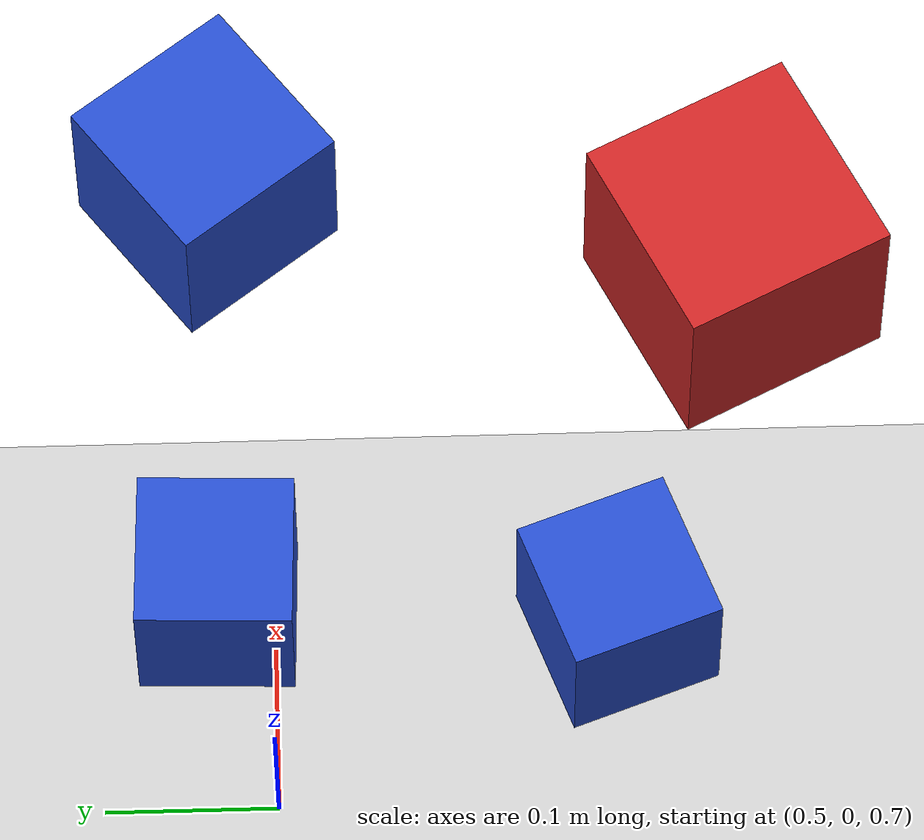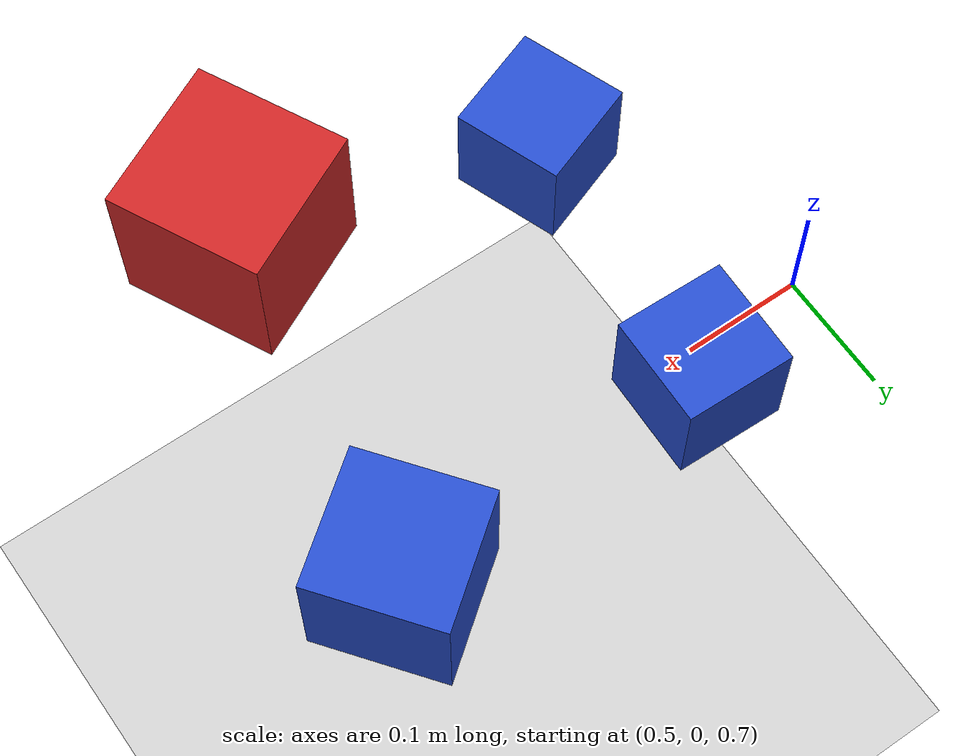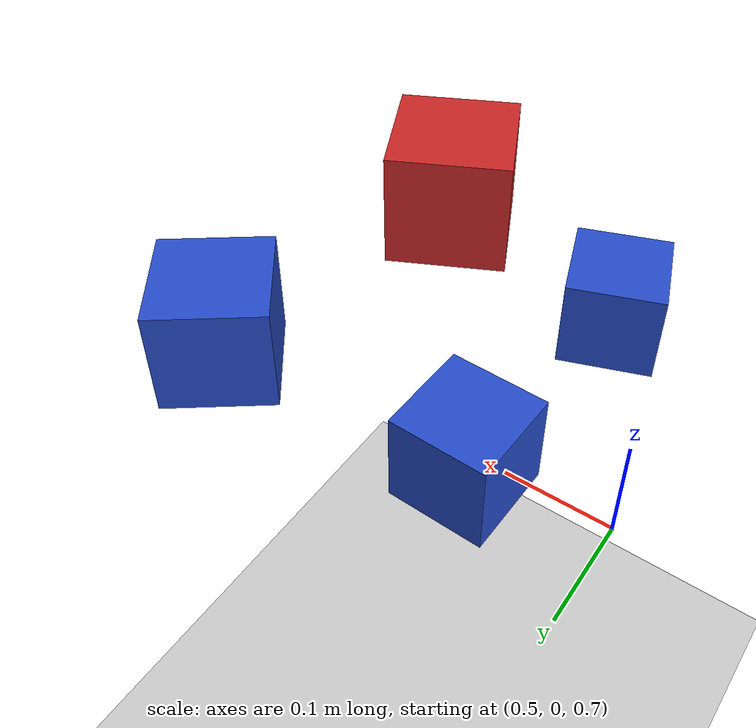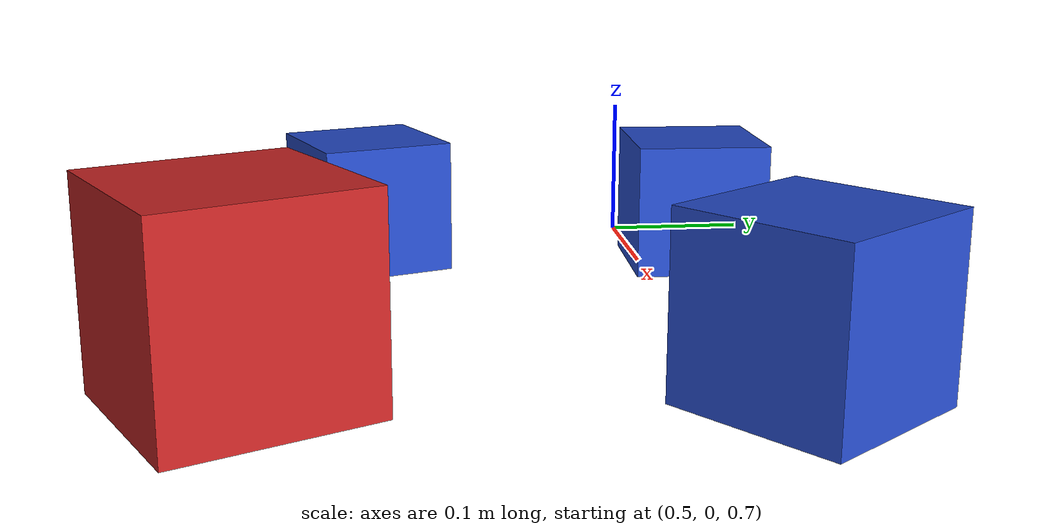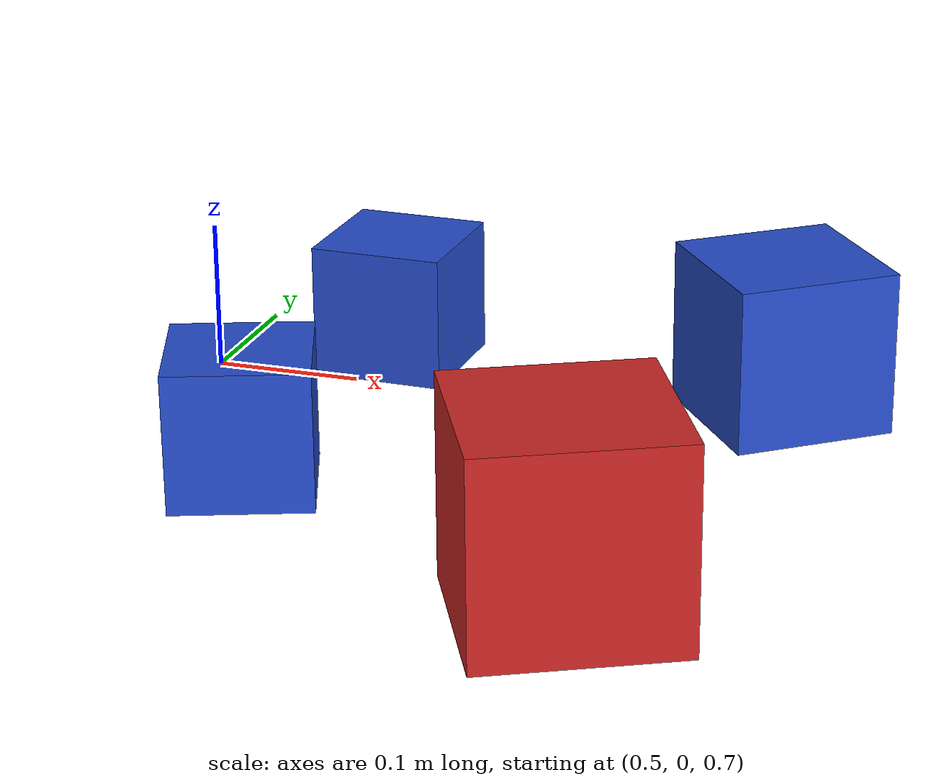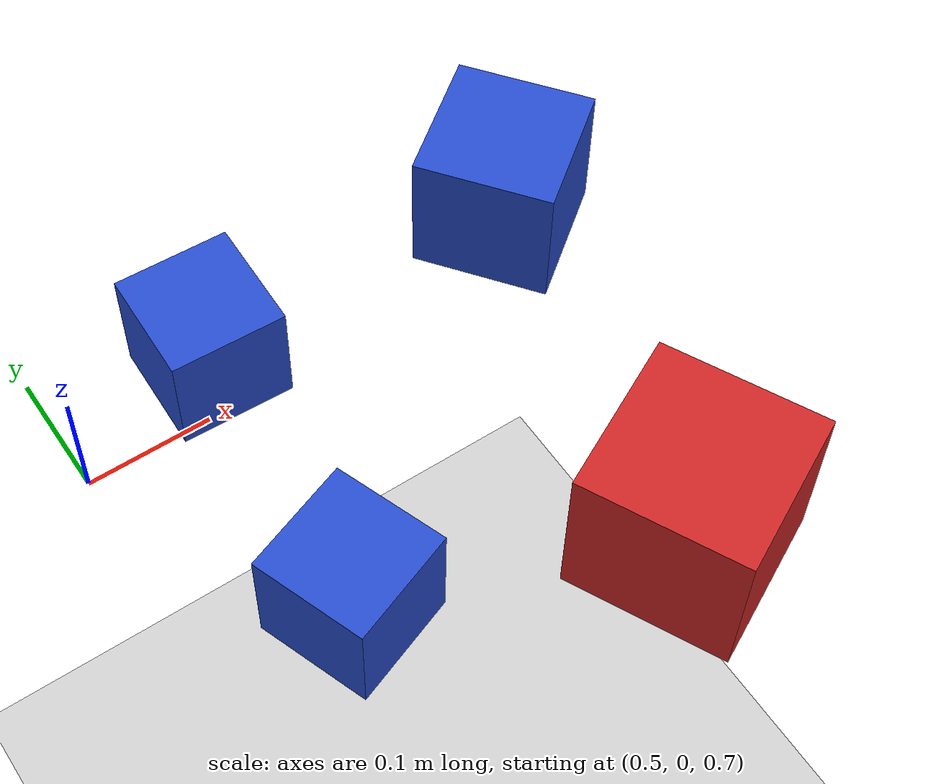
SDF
<sdf version="1.4">
 <world name="simple">
  <include><uri>model://ground_plane</uri></include>
  <include><uri>model://sun</uri></include>
  <include>
   <uri>model://blue_cube9cm</uri>
   <name>block2</name>
   <pose>0.620899716959 0.0330793847041 0.75 0 0 -0.0305266484936</pose>
  </include>
  <include>
   <uri>model://blue_cube9cm</uri>
   <name>block4</name>
   <pose>0.601535809576 -0.197459713803 0.75 0 0 -1.22022417696</pose>
  </include>
  <include>
   <uri>model://red_cube13cm</uri>
   <name>block5</name>
   <pose>0.830939600867 -0.274266584111 0.75 0 0 2.0309542172</pose>
  </include>
  <include>
   <uri>model://blue_cube11cm</uri>
   <name>block6</name>
   <pose>0.888462334566 0.0362858523182 0.75 0 0 0.648897348062</pose>
  </include>
 </world>
</sdf>

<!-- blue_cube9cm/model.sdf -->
<sdf version='1.4'>
  <model name="blue_cube9cm">
      <static>0</static>
      <link name='link'>
        <inertial>
          <mass>0.3</mass>
          <inertia>
            <ixx>0.001</ixx>
            <ixy>0.000000</ixy>
            <ixz>0.000000</ixz>
            <iyy>0.001</iyy>
            <iyz>0.000000</iyz>
            <izz>0.001</izz>
          </inertia>
        </inertial>
        <collision name='collision'>
          <geometry>
            <box>
              <size>0.090 0.090 0.090</size>
            </box>
          </geometry>
          <surface>
            <friction>
              <ode>
                <mu>5.0</mu>
                <mu2>5.0</mu2>
              </ode>
            </friction>
            <contact>
              <ode>
                <kp>1000000.0</kp>
                <kd>100.0</kd>
                <max_vel>1.0</max_vel>
                <min_depth>0.002</min_depth>
              </ode>
            </contact>
          </surface>
        </collision>
        <visual name='visual'>
          <geometry>
            <box>
              <size>0.090 0.090 0.090</size>
            </box>
          </geometry>
          <material>
            <script>
              <uri>file://media/materials/scripts/gazebo.material</uri>
              <name>Gazebo/Blue</name>
            </script>
          </material>
        </visual>
        <velocity_decay>
          <linear>0.000000</linear>
          <angular>0.000000</angular>
        </velocity_decay>
        <self_collide>0</self_collide>
        <kinematic>0</kinematic>
        <gravity>1</gravity>
      </link>
  </model>
</sdf>

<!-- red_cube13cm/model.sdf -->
<sdf version='1.4'>
  <model name="red_cube13cm">
      <static>0</static>
      <link name='link'>
        <inertial>
          <mass>0.3</mass>
          <inertia>
            <ixx>0.001</ixx>
            <ixy>0.000000</ixy>
            <ixz>0.000000</ixz>
            <iyy>0.001</iyy>
            <iyz>0.000000</iyz>
            <izz>0.001</izz>
          </inertia>
        </inertial>
        <collision name='collision'>
          <geometry>
            <box>
              <size>0.130 0.130 0.130</size>
            </box>
          </geometry>
          <surface>
            <friction>
              <ode>
                <mu>5.0</mu>
                <mu2>5.0</mu2>
              </ode>
            </friction>
            <contact>
              <ode>
                <kp>1000000.0</kp>
                <kd>100.0</kd>
                <max_vel>1.0</max_vel>
                <min_depth>0.002</min_depth>
              </ode>
            </contact>
          </surface>
        </collision>
        <visual name='visual'>
          <geometry>
            <box>
              <size>0.130 0.130 0.130</size>
            </box>
          </geometry>
          <material>
            <script>
              <uri>file://media/materials/scripts/gazebo.material</uri>
              <name>Gazebo/Red</name>
            </script>
          </material>
        </visual>
        <velocity_decay>
          <linear>0.000000</linear>
          <angular>0.000000</angular>
        </velocity_decay>
        <self_collide>0</self_collide>
        <kinematic>0</kinematic>
        <gravity>1</gravity>
      </link>
  </model>
</sdf>

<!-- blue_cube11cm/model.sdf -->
<sdf version='1.4'>
  <model name="blue_cube11cm">
      <static>0</static>
      <link name='link'>
        <inertial>
          <mass>0.3</mass>
          <inertia>
            <ixx>0.001</ixx>
            <ixy>0.000000</ixy>
            <ixz>0.000000</ixz>
            <iyy>0.001</iyy>
            <iyz>0.000000</iyz>
            <izz>0.001</izz>
          </inertia>
        </inertial>
        <collision name='collision'>
          <geometry>
            <box>
              <size>0.110 0.110 0.110</size>
            </box>
          </geometry>
          <surface>
            <friction>
              <ode>
                <mu>5.0</mu>
                <mu2>5.0</mu2>
              </ode>
            </friction>
            <contact>
              <ode>
                <kp>1000000.0</kp>
                <kd>100.0</kd>
                <max_vel>1.0</max_vel>
                <min_depth>0.002</min_depth>
              </ode>
            </contact>
          </surface>
        </collision>
        <visual name='visual'>
          <geometry>
            <box>
              <size>0.110 0.110 0.110</size>
            </box>
          </geometry>
          <material>
            <script>
              <uri>file://media/materials/scripts/gazebo.material</uri>
              <name>Gazebo/Blue</name>
            </script>
          </material>
        </visual>
        <velocity_decay>
          <linear>0.000000</linear>
          <angular>0.000000</angular>
        </velocity_decay>
        <self_collide>0</self_collide>
        <kinematic>0</kinematic>
        <gravity>1</gravity>
      </link>
  </model>
</sdf>
